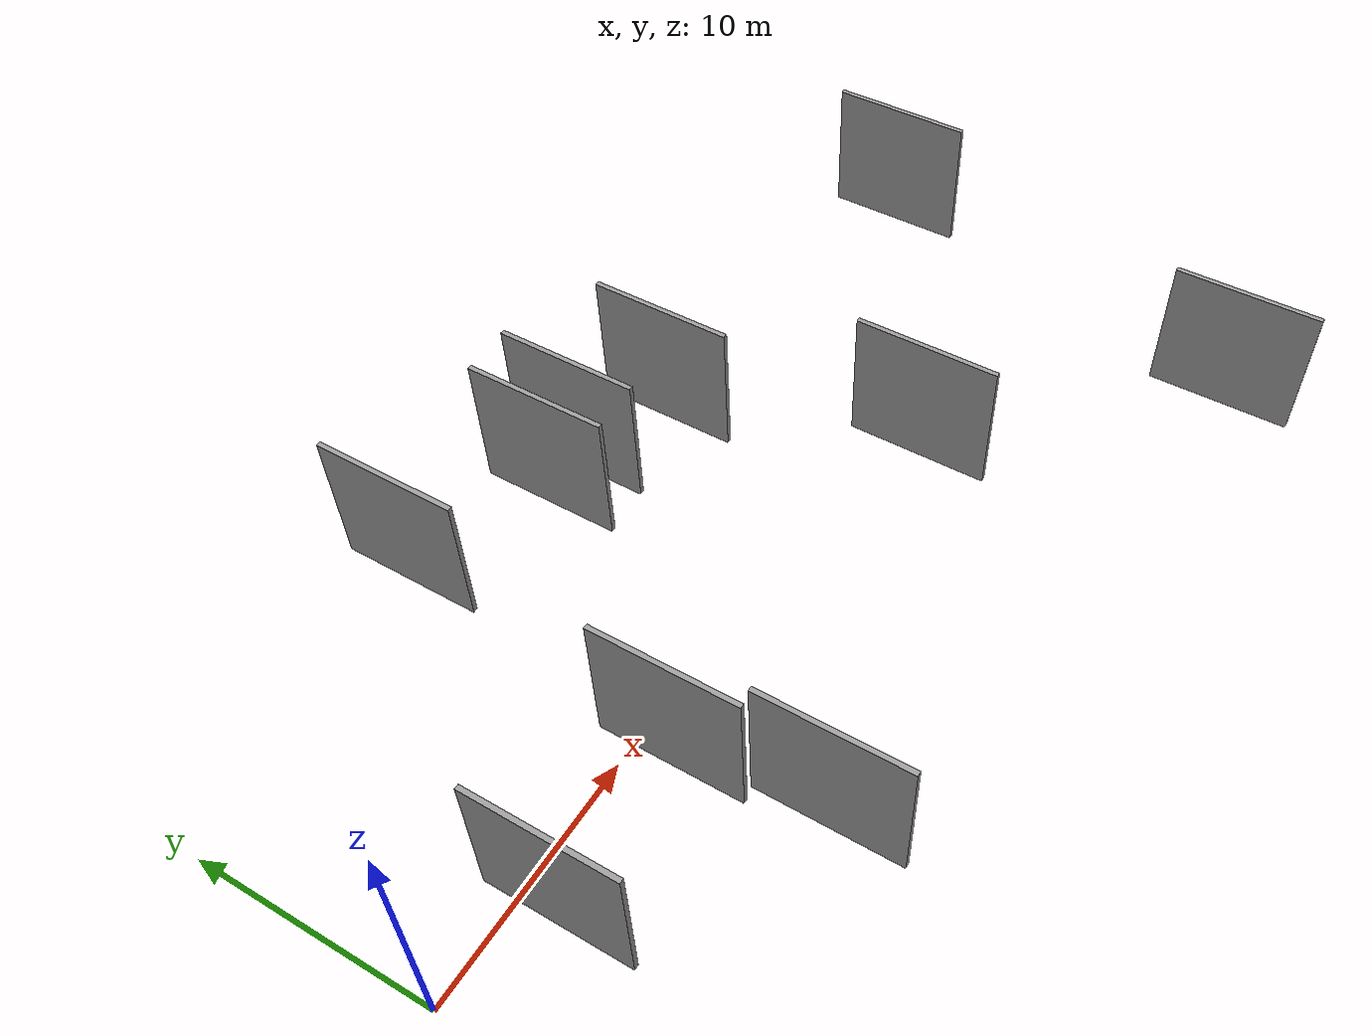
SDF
<sdf version="1.6">
 <world name="default">
  <scene>
   <sky><clouds><speed>12</speed></clouds></sky>
   <ambient>0.4 0.4 0.4 1</ambient>
   <background>0.7 0.7 0.7 1</background>
   <shadows>1</shadows>
  </scene>
  <gravity>0 0 -9.8066</gravity>
  <magnetic_field>6e-06 2.3e-05 -4.2e-05</magnetic_field>
  <physics default="0" name="default_physics" type="ode">
   <ode>
    <solver>
     <type>quick</type>
     <iters>10</iters>
     <sor>1.0</sor>
     <use_dynamic_moi_rescaling>0</use_dynamic_moi_rescaling>
    </solver>
    <constraints>
     <cfm>0</cfm>
     <erp>0.2</erp>
     <contact_max_correcting_vel>100</contact_max_correcting_vel>
     <contact_surface_layer>0.001</contact_surface_layer>
    </constraints>
   </ode>
   <max_step_size>0.004</max_step_size>
   <real_time_factor>1</real_time_factor>
   <real_time_update_rate>250</real_time_update_rate>
  </physics>
  <light name="sun" type="directional">
   <pose>0 0 10 0 0 0</pose>
   <diffuse>0.8 0.8 0.8 1</diffuse>
   <specular>0.2 0.2 0.2 1</specular>
   <attenuation>
    <range>1000</range>
    <constant>0.9</constant>
    <linear>0.01</linear>
    <quadratic>0.001</quadratic>
   </attenuation>
   <direction>-0.5 0.1 -0.9</direction>
  </light>
  <model name="grey_wall_1">
   <static>1</static>
   <pose>11.0827 -1.5407 0.0 0.000000 0.000000 1.570796</pose>
   <link name="link">
    <pose>0 0 3.00 0 0 0</pose>
    <collision name="collision"><geometry><box><size>6.00 0.2 6.00</size></box></geometry></collision>
    <visual name="visual">
     <cast_shadows>0</cast_shadows>
     <geometry><box><size>6.00 0.2 6.00</size></box></geometry>
     <material>
      <script>
       <uri>model://grey_wall/materials/scripts</uri>
       <uri>model://grey_wall/materials/textures</uri>
       <name>vrc/grey_wall</name>
      </script>
     </material>
    </visual>
   </link>
  </model>
  <model name="grey_wall_2">
   <static>1</static>
   <pose>18.6113 9.1446 0.0 0.000000 0.000000 1.570796</pose>
   <link name="link">
    <pose>0 0 3.00 0 0 0</pose>
    <collision name="collision"><geometry><box><size>6.00 0.2 6.00</size></box></geometry></collision>
    <visual name="visual">
     <cast_shadows>0</cast_shadows>
     <geometry><box><size>6.00 0.2 6.00</size></box></geometry>
     <material>
      <script>
       <uri>model://grey_wall/materials/scripts</uri>
       <uri>model://grey_wall/materials/textures</uri>
       <name>vrc/grey_wall</name>
      </script>
     </material>
    </visual>
   </link>
  </model>
  <model name="grey_wall_3">
   <static>1</static>
   <pose>37.4534 -11.8571 0.0 0.000000 0.000000 1.570796</pose>
   <link name="link">
    <pose>0 0 3.00 0 0 0</pose>
    <collision name="collision"><geometry><box><size>6.00 0.2 6.00</size></box></geometry></collision>
    <visual name="visual">
     <cast_shadows>0</cast_shadows>
     <geometry><box><size>6.00 0.2 6.00</size></box></geometry>
     <material>
      <script>
       <uri>model://grey_wall/materials/scripts</uri>
       <uri>model://grey_wall/materials/textures</uri>
       <name>vrc/grey_wall</name>
      </script>
     </material>
    </visual>
   </link>
  </model>
  <model name="grey_wall_4">
   <static>1</static>
   <pose>28.3505 -2.2372 0.0 0.000000 0.000000 1.570796</pose>
   <link name="link">
    <pose>0 0 3.00 0 0 0</pose>
    <collision name="collision"><geometry><box><size>6.00 0.2 6.00</size></box></geometry></collision>
    <visual name="visual">
     <cast_shadows>0</cast_shadows>
     <geometry><box><size>6.00 0.2 6.00</size></box></geometry>
     <material>
      <script>
       <uri>model://grey_wall/materials/scripts</uri>
       <uri>model://grey_wall/materials/textures</uri>
       <name>vrc/grey_wall</name>
      </script>
     </material>
    </visual>
   </link>
  </model>
  <model name="grey_wall_5">
   <static>1</static>
   <pose>4.3306 -1.6228 0.0 0.000000 0.000000 1.570796</pose>
   <link name="link">
    <pose>0 0 3.00 0 0 0</pose>
    <collision name="collision"><geometry><box><size>6.00 0.2 6.00</size></box></geometry></collision>
    <visual name="visual">
     <cast_shadows>0</cast_shadows>
     <geometry><box><size>6.00 0.2 6.00</size></box></geometry>
     <material>
      <script>
       <uri>model://grey_wall/materials/scripts</uri>
       <uri>model://grey_wall/materials/textures</uri>
       <name>vrc/grey_wall</name>
      </script>
     </material>
    </visual>
   </link>
  </model>
  <model name="grey_wall_6">
   <static>1</static>
   <pose>20.7681 9.2508 0.0 0.000000 0.000000 1.570796</pose>
   <link name="link">
    <pose>0 0 3.00 0 0 0</pose>
    <collision name="collision"><geometry><box><size>6.00 0.2 6.00</size></box></geometry></collision>
    <visual name="visual">
     <cast_shadows>0</cast_shadows>
     <geometry><box><size>6.00 0.2 6.00</size></box></geometry>
     <material>
      <script>
       <uri>model://grey_wall/materials/scripts</uri>
       <uri>model://grey_wall/materials/textures</uri>
       <name>vrc/grey_wall</name>
      </script>
     </material>
    </visual>
   </link>
  </model>
  <model name="grey_wall_7">
   <static>1</static>
   <pose>12.7502 11.3923 0.0 0.000000 0.000000 1.570796</pose>
   <link name="link">
    <pose>0 0 3.00 0 0 0</pose>
    <collision name="collision"><geometry><box><size>6.00 0.2 6.00</size></box></geometry></collision>
    <visual name="visual">
     <cast_shadows>0</cast_shadows>
     <geometry><box><size>6.00 0.2 6.00</size></box></geometry>
     <material>
      <script>
       <uri>model://grey_wall/materials/scripts</uri>
       <uri>model://grey_wall/materials/textures</uri>
       <name>vrc/grey_wall</name>
      </script>
     </material>
    </visual>
   </link>
  </model>
  <model name="grey_wall_8">
   <static>1</static>
   <pose>24.9235 7.7165 0.0 0.000000 0.000000 1.570796</pose>
   <link name="link">
    <pose>0 0 3.00 0 0 0</pose>
    <collision name="collision"><geometry><box><size>6.00 0.2 6.00</size></box></geometry></collision>
    <visual name="visual">
     <cast_shadows>0</cast_shadows>
     <geometry><box><size>6.00 0.2 6.00</size></box></geometry>
     <material>
      <script>
       <uri>model://grey_wall/materials/scripts</uri>
       <uri>model://grey_wall/materials/textures</uri>
       <name>vrc/grey_wall</name>
      </script>
     </material>
    </visual>
   </link>
  </model>
  <model name="grey_wall_9">
   <static>1</static>
   <pose>11.7563 -7.3937 0.0 0.000000 0.000000 1.570796</pose>
   <link name="link">
    <pose>0 0 3.00 0 0 0</pose>
    <collision name="collision"><geometry><box><size>6.00 0.2 6.00</size></box></geometry></collision>
    <visual name="visual">
     <cast_shadows>0</cast_shadows>
     <geometry><box><size>6.00 0.2 6.00</size></box></geometry>
     <material>
      <script>
       <uri>model://grey_wall/materials/scripts</uri>
       <uri>model://grey_wall/materials/textures</uri>
       <name>vrc/grey_wall</name>
      </script>
     </material>
    </visual>
   </link>
  </model>
  <model name="grey_wall_10">
   <static>1</static>
   <pose>41.2623 5.5801 0.0 0.000000 0.000000 1.570796</pose>
   <link name="link">
    <pose>0 0 3.00 0 0 0</pose>
    <collision name="collision"><geometry><box><size>6.00 0.2 6.00</size></box></geometry></collision>
    <visual name="visual">
     <cast_shadows>0</cast_shadows>
     <geometry><box><size>6.00 0.2 6.00</size></box></geometry>
     <material>
      <script>
       <uri>model://grey_wall/materials/scripts</uri>
       <uri>model://grey_wall/materials/textures</uri>
       <name>vrc/grey_wall</name>
      </script>
     </material>
    </visual>
   </link>
  </model>
 </world>
</sdf>
